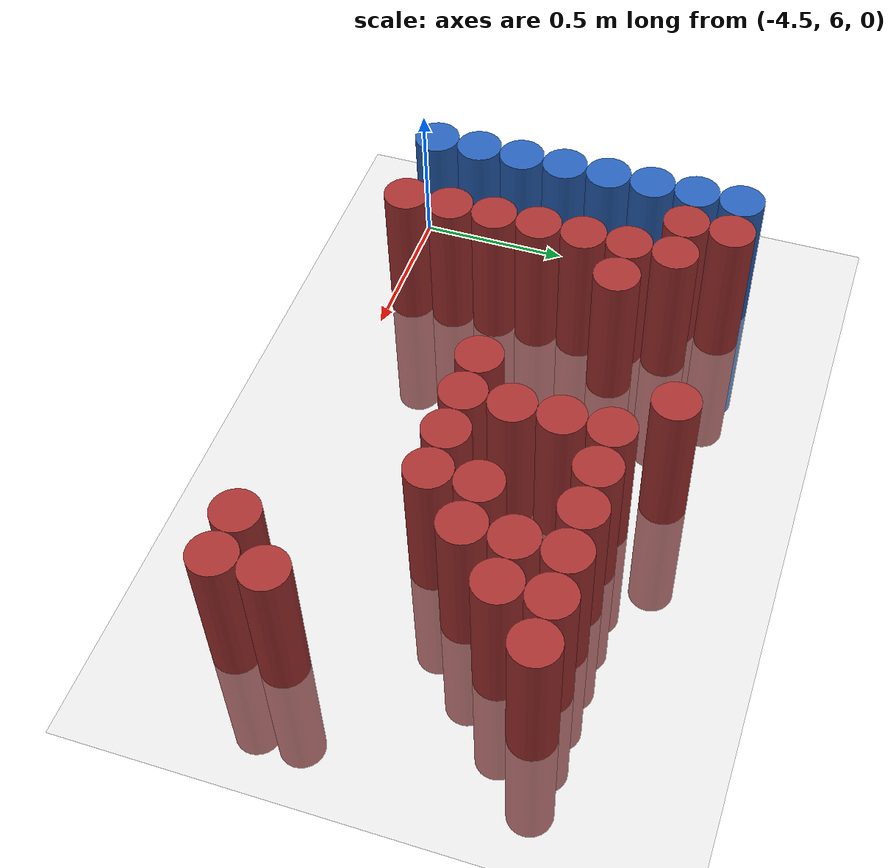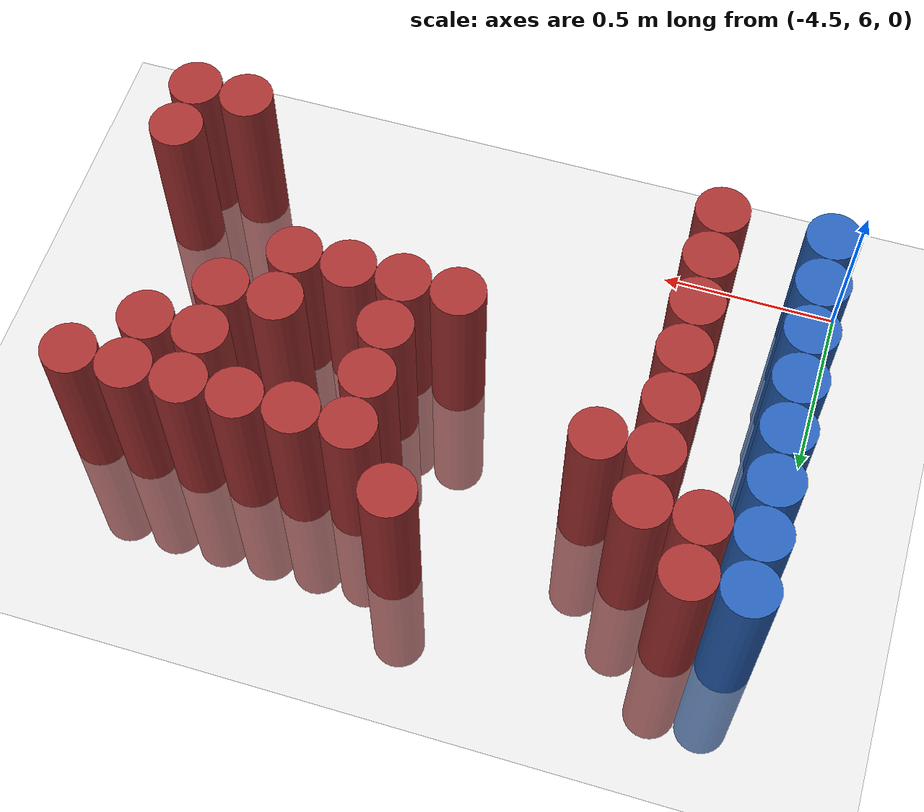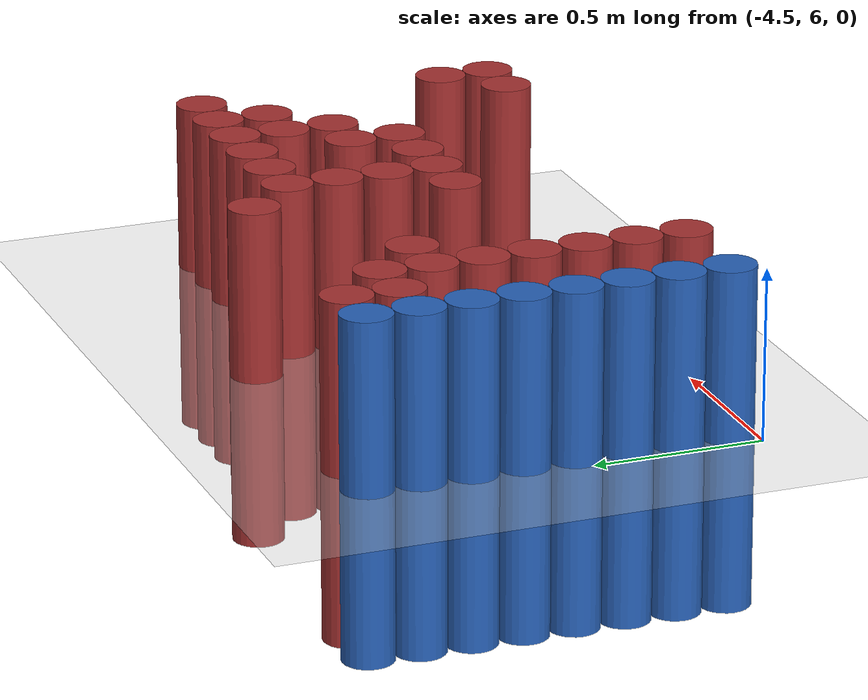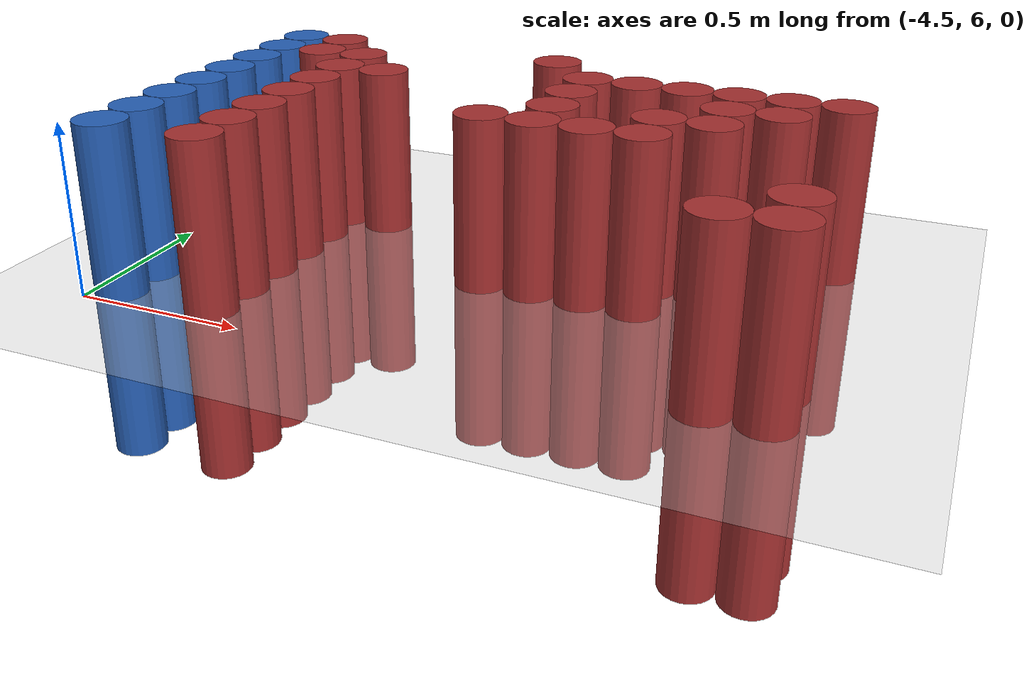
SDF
<sdf version="1.6">
 <world name="default">
  <model name="ground_plane">
   <static>1</static>
   <link name="link">
    <collision name="collision">
     <geometry><plane><normal>0 0 1</normal><size>100 100</size></plane></geometry>
     <surface><friction><ode><mu>100</mu><mu2>50</mu2></ode></friction></surface>
    </collision>
    <visual name="visual">
     <cast_shadows>0</cast_shadows>
     <geometry><plane><normal>0 0 1</normal><size>100 100</size></plane></geometry>
     <material>
      <script><uri>file://media/materials/scripts/gazebo.material</uri><name>Gazebo/Grey</name></script>
     </material>
    </visual>
   </link>
  </model>
  <model name="unit_cylinder_102">
   <static>1</static>
   <pose>-4.425000 6.075000 0.000000 0.000000 0.000000 0.000000</pose>
   <link name="link">
    <inertial>
     <mass>1</mass>
     <inertia><ixx>0.145833</ixx><ixy>0</ixy><ixz>0</ixz><iyy>0.145833</iyy><iyz>0</iyz><izz>0.125</izz></inertia>
    </inertial>
    <collision name="collision">
     <geometry><cylinder><radius>0.075000</radius><length>1</length></cylinder></geometry>
    </collision>
    <visual name="visual">
     <geometry><cylinder><radius>0.075000</radius><length>1</length></cylinder></geometry>
     <material>
      <ambient>0.152000 0.379000 0.720000 1</ambient>
      <diffuse>0.152000 0.379000 0.720000 1</diffuse>
     </material>
     <material>
      <script><name>Gazebo/Grey</name><uri>file://media/materials/scripts/gazebo.material</uri></script>
     </material>
    </visual>
    <sensor name="sensor_contact" type="contact"><contact><collision>collision</collision></contact></sensor>
   </link>
   <plugin filename="gz-sim-touchplugin-system" name="gz::sim::systems::TouchPlugin">
    <target>robot</target>
    <namespace>robot</namespace>
    <time>0.001</time>
    <enabled>true</enabled>
   </plugin>
  </model>
  <model name="unit_cylinder_103">
   <static>1</static>
   <pose>-4.425000 6.225000 0.000000 0.000000 0.000000 0.000000</pose>
   <link name="link">
    <inertial>
     <mass>1</mass>
     <inertia><ixx>0.145833</ixx><ixy>0</ixy><ixz>0</ixz><iyy>0.145833</iyy><iyz>0</iyz><izz>0.125</izz></inertia>
    </inertial>
    <collision name="collision">
     <geometry><cylinder><radius>0.075000</radius><length>1</length></cylinder></geometry>
    </collision>
    <visual name="visual">
     <geometry><cylinder><radius>0.075000</radius><length>1</length></cylinder></geometry>
     <material>
      <ambient>0.152000 0.379000 0.720000 1</ambient>
      <diffuse>0.152000 0.379000 0.720000 1</diffuse>
     </material>
     <material>
      <script><name>Gazebo/Grey</name><uri>file://media/materials/scripts/gazebo.material</uri></script>
     </material>
    </visual>
    <sensor name="sensor_contact" type="contact"><contact><collision>collision</collision></contact></sensor>
   </link>
   <plugin filename="gz-sim-touchplugin-system" name="gz::sim::systems::TouchPlugin">
    <target>robot</target>
    <namespace>robot</namespace>
    <time>0.001</time>
    <enabled>true</enabled>
   </plugin>
  </model>
  <model name="unit_cylinder_104">
   <static>1</static>
   <pose>-4.425000 6.375000 0.000000 0.000000 0.000000 0.000000</pose>
   <link name="link">
    <inertial>
     <mass>1</mass>
     <inertia><ixx>0.145833</ixx><ixy>0</ixy><ixz>0</ixz><iyy>0.145833</iyy><iyz>0</iyz><izz>0.125</izz></inertia>
    </inertial>
    <collision name="collision">
     <geometry><cylinder><radius>0.075000</radius><length>1</length></cylinder></geometry>
    </collision>
    <visual name="visual">
     <geometry><cylinder><radius>0.075000</radius><length>1</length></cylinder></geometry>
     <material>
      <ambient>0.152000 0.379000 0.720000 1</ambient>
      <diffuse>0.152000 0.379000 0.720000 1</diffuse>
     </material>
     <material>
      <script><name>Gazebo/Grey</name><uri>file://media/materials/scripts/gazebo.material</uri></script>
     </material>
    </visual>
    <sensor name="sensor_contact" type="contact"><contact><collision>collision</collision></contact></sensor>
   </link>
   <plugin filename="gz-sim-touchplugin-system" name="gz::sim::systems::TouchPlugin">
    <target>robot</target>
    <namespace>robot</namespace>
    <time>0.001</time>
    <enabled>true</enabled>
   </plugin>
  </model>
  <model name="unit_cylinder_105">
   <static>1</static>
   <pose>-4.425000 6.525000 0.000000 0.000000 0.000000 0.000000</pose>
   <link name="link">
    <inertial>
     <mass>1</mass>
     <inertia><ixx>0.145833</ixx><ixy>0</ixy><ixz>0</ixz><iyy>0.145833</iyy><iyz>0</iyz><izz>0.125</izz></inertia>
    </inertial>
    <collision name="collision">
     <geometry><cylinder><radius>0.075000</radius><length>1</length></cylinder></geometry>
    </collision>
    <visual name="visual">
     <geometry><cylinder><radius>0.075000</radius><length>1</length></cylinder></geometry>
     <material>
      <ambient>0.152000 0.379000 0.720000 1</ambient>
      <diffuse>0.152000 0.379000 0.720000 1</diffuse>
     </material>
     <material>
      <script><name>Gazebo/Grey</name><uri>file://media/materials/scripts/gazebo.material</uri></script>
     </material>
    </visual>
    <sensor name="sensor_contact" type="contact"><contact><collision>collision</collision></contact></sensor>
   </link>
   <plugin filename="gz-sim-touchplugin-system" name="gz::sim::systems::TouchPlugin">
    <target>robot</target>
    <namespace>robot</namespace>
    <time>0.001</time>
    <enabled>true</enabled>
   </plugin>
  </model>
  <model name="unit_cylinder_106">
   <static>1</static>
   <pose>-4.425000 6.675000 0.000000 0.000000 0.000000 0.000000</pose>
   <link name="link">
    <inertial>
     <mass>1</mass>
     <inertia><ixx>0.145833</ixx><ixy>0</ixy><ixz>0</ixz><iyy>0.145833</iyy><iyz>0</iyz><izz>0.125</izz></inertia>
    </inertial>
    <collision name="collision">
     <geometry><cylinder><radius>0.075000</radius><length>1</length></cylinder></geometry>
    </collision>
    <visual name="visual">
     <geometry><cylinder><radius>0.075000</radius><length>1</length></cylinder></geometry>
     <material>
      <ambient>0.152000 0.379000 0.720000 1</ambient>
      <diffuse>0.152000 0.379000 0.720000 1</diffuse>
     </material>
     <material>
      <script><name>Gazebo/Grey</name><uri>file://media/materials/scripts/gazebo.material</uri></script>
     </material>
    </visual>
    <sensor name="sensor_contact" type="contact"><contact><collision>collision</collision></contact></sensor>
   </link>
   <plugin filename="gz-sim-touchplugin-system" name="gz::sim::systems::TouchPlugin">
    <target>robot</target>
    <namespace>robot</namespace>
    <time>0.001</time>
    <enabled>true</enabled>
   </plugin>
  </model>
  <model name="unit_cylinder_107">
   <static>1</static>
   <pose>-4.425000 6.825000 0.000000 0.000000 0.000000 0.000000</pose>
   <link name="link">
    <inertial>
     <mass>1</mass>
     <inertia><ixx>0.145833</ixx><ixy>0</ixy><ixz>0</ixz><iyy>0.145833</iyy><iyz>0</iyz><izz>0.125</izz></inertia>
    </inertial>
    <collision name="collision">
     <geometry><cylinder><radius>0.075000</radius><length>1</length></cylinder></geometry>
    </collision>
    <visual name="visual">
     <geometry><cylinder><radius>0.075000</radius><length>1</length></cylinder></geometry>
     <material>
      <ambient>0.152000 0.379000 0.720000 1</ambient>
      <diffuse>0.152000 0.379000 0.720000 1</diffuse>
     </material>
     <material>
      <script><name>Gazebo/Grey</name><uri>file://media/materials/scripts/gazebo.material</uri></script>
     </material>
    </visual>
    <sensor name="sensor_contact" type="contact"><contact><collision>collision</collision></contact></sensor>
   </link>
   <plugin filename="gz-sim-touchplugin-system" name="gz::sim::systems::TouchPlugin">
    <target>robot</target>
    <namespace>robot</namespace>
    <time>0.001</time>
    <enabled>true</enabled>
   </plugin>
  </model>
  <model name="unit_cylinder_108">
   <static>1</static>
   <pose>-4.425000 6.975000 0.000000 0.000000 0.000000 0.000000</pose>
   <link name="link">
    <inertial>
     <mass>1</mass>
     <inertia><ixx>0.145833</ixx><ixy>0</ixy><ixz>0</ixz><iyy>0.145833</iyy><iyz>0</iyz><izz>0.125</izz></inertia>
    </inertial>
    <collision name="collision">
     <geometry><cylinder><radius>0.075000</radius><length>1</length></cylinder></geometry>
    </collision>
    <visual name="visual">
     <geometry><cylinder><radius>0.075000</radius><length>1</length></cylinder></geometry>
     <material>
      <ambient>0.152000 0.379000 0.720000 1</ambient>
      <diffuse>0.152000 0.379000 0.720000 1</diffuse>
     </material>
     <material>
      <script><name>Gazebo/Grey</name><uri>file://media/materials/scripts/gazebo.material</uri></script>
     </material>
    </visual>
    <sensor name="sensor_contact" type="contact"><contact><collision>collision</collision></contact></sensor>
   </link>
   <plugin filename="gz-sim-touchplugin-system" name="gz::sim::systems::TouchPlugin">
    <target>robot</target>
    <namespace>robot</namespace>
    <time>0.001</time>
    <enabled>true</enabled>
   </plugin>
  </model>
  <model name="unit_cylinder_109">
   <static>1</static>
   <pose>-4.425000 7.125000 0.000000 0.000000 0.000000 0.000000</pose>
   <link name="link">
    <inertial>
     <mass>1</mass>
     <inertia><ixx>0.145833</ixx><ixy>0</ixy><ixz>0</ixz><iyy>0.145833</iyy><iyz>0</iyz><izz>0.125</izz></inertia>
    </inertial>
    <collision name="collision">
     <geometry><cylinder><radius>0.075000</radius><length>1</length></cylinder></geometry>
    </collision>
    <visual name="visual">
     <geometry><cylinder><radius>0.075000</radius><length>1</length></cylinder></geometry>
     <material>
      <ambient>0.152000 0.379000 0.720000 1</ambient>
      <diffuse>0.152000 0.379000 0.720000 1</diffuse>
     </material>
     <material>
      <script><name>Gazebo/Grey</name><uri>file://media/materials/scripts/gazebo.material</uri></script>
     </material>
    </visual>
    <sensor name="sensor_contact" type="contact"><contact><collision>collision</collision></contact></sensor>
   </link>
   <plugin filename="gz-sim-touchplugin-system" name="gz::sim::systems::TouchPlugin">
    <target>robot</target>
    <namespace>robot</namespace>
    <time>0.001</time>
    <enabled>true</enabled>
   </plugin>
  </model>
  <model name="unit_cylinder_127">
   <static>1</static>
   <pose>-4.275000 6.975000 0.000000 0.000000 0.000000 0.000000</pose>
   <link name="link">
    <inertial>
     <mass>1</mass>
     <inertia><ixx>0.145833</ixx><ixy>0</ixy><ixz>0</ixz><iyy>0.145833</iyy><iyz>0</iyz><izz>0.125</izz></inertia>
    </inertial>
    <collision name="collision">
     <geometry><cylinder><radius>0.075000</radius><length>1</length></cylinder></geometry>
    </collision>
    <visual name="visual">
     <geometry><cylinder><radius>0.075000</radius><length>1</length></cylinder></geometry>
     <material>
      <ambient>0.648000 0.192000 0.192000 1</ambient>
      <diffuse>0.648000 0.192000 0.192000 1</diffuse>
     </material>
     <material>
      <script><name>Gazebo/Grey</name><uri>file://media/materials/scripts/gazebo.material</uri></script>
     </material>
    </visual>
    <sensor name="sensor_contact" type="contact"><contact><collision>collision</collision></contact></sensor>
   </link>
   <plugin filename="gz-sim-touchplugin-system" name="gz::sim::systems::TouchPlugin">
    <target>robot</target>
    <namespace>robot</namespace>
    <time>0.001</time>
    <enabled>true</enabled>
   </plugin>
  </model>
  <model name="unit_cylinder_128">
   <static>1</static>
   <pose>-4.275000 7.125000 0.000000 0.000000 0.000000 0.000000</pose>
   <link name="link">
    <inertial>
     <mass>1</mass>
     <inertia><ixx>0.145833</ixx><ixy>0</ixy><ixz>0</ixz><iyy>0.145833</iyy><iyz>0</iyz><izz>0.125</izz></inertia>
    </inertial>
    <collision name="collision">
     <geometry><cylinder><radius>0.075000</radius><length>1</length></cylinder></geometry>
    </collision>
    <visual name="visual">
     <geometry><cylinder><radius>0.075000</radius><length>1</length></cylinder></geometry>
     <material>
      <ambient>0.648000 0.192000 0.192000 1</ambient>
      <diffuse>0.648000 0.192000 0.192000 1</diffuse>
     </material>
     <material>
      <script><name>Gazebo/Grey</name><uri>file://media/materials/scripts/gazebo.material</uri></script>
     </material>
    </visual>
    <sensor name="sensor_contact" type="contact"><contact><collision>collision</collision></contact></sensor>
   </link>
   <plugin filename="gz-sim-touchplugin-system" name="gz::sim::systems::TouchPlugin">
    <target>robot</target>
    <namespace>robot</namespace>
    <time>0.001</time>
    <enabled>true</enabled>
   </plugin>
  </model>
  <model name="unit_cylinder_139">
   <static>1</static>
   <pose>-4.125000 6.075000 0.000000 0.000000 0.000000 0.000000</pose>
   <link name="link">
    <inertial>
     <mass>1</mass>
     <inertia><ixx>0.145833</ixx><ixy>0</ixy><ixz>0</ixz><iyy>0.145833</iyy><iyz>0</iyz><izz>0.125</izz></inertia>
    </inertial>
    <collision name="collision">
     <geometry><cylinder><radius>0.075000</radius><length>1</length></cylinder></geometry>
    </collision>
    <visual name="visual">
     <geometry><cylinder><radius>0.075000</radius><length>1</length></cylinder></geometry>
     <material>
      <ambient>0.648000 0.192000 0.192000 1</ambient>
      <diffuse>0.648000 0.192000 0.192000 1</diffuse>
     </material>
     <material>
      <script><name>Gazebo/Grey</name><uri>file://media/materials/scripts/gazebo.material</uri></script>
     </material>
    </visual>
    <sensor name="sensor_contact" type="contact"><contact><collision>collision</collision></contact></sensor>
   </link>
   <plugin filename="gz-sim-touchplugin-system" name="gz::sim::systems::TouchPlugin">
    <target>robot</target>
    <namespace>robot</namespace>
    <time>0.001</time>
    <enabled>true</enabled>
   </plugin>
  </model>
  <model name="unit_cylinder_140">
   <static>1</static>
   <pose>-4.125000 6.225000 0.000000 0.000000 0.000000 0.000000</pose>
   <link name="link">
    <inertial>
     <mass>1</mass>
     <inertia><ixx>0.145833</ixx><ixy>0</ixy><ixz>0</ixz><iyy>0.145833</iyy><iyz>0</iyz><izz>0.125</izz></inertia>
    </inertial>
    <collision name="collision">
     <geometry><cylinder><radius>0.075000</radius><length>1</length></cylinder></geometry>
    </collision>
    <visual name="visual">
     <geometry><cylinder><radius>0.075000</radius><length>1</length></cylinder></geometry>
     <material>
      <ambient>0.648000 0.192000 0.192000 1</ambient>
      <diffuse>0.648000 0.192000 0.192000 1</diffuse>
     </material>
     <material>
      <script><name>Gazebo/Grey</name><uri>file://media/materials/scripts/gazebo.material</uri></script>
     </material>
    </visual>
    <sensor name="sensor_contact" type="contact"><contact><collision>collision</collision></contact></sensor>
   </link>
   <plugin filename="gz-sim-touchplugin-system" name="gz::sim::systems::TouchPlugin">
    <target>robot</target>
    <namespace>robot</namespace>
    <time>0.001</time>
    <enabled>true</enabled>
   </plugin>
  </model>
  <model name="unit_cylinder_141">
   <static>1</static>
   <pose>-4.125000 6.375000 0.000000 0.000000 0.000000 0.000000</pose>
   <link name="link">
    <inertial>
     <mass>1</mass>
     <inertia><ixx>0.145833</ixx><ixy>0</ixy><ixz>0</ixz><iyy>0.145833</iyy><iyz>0</iyz><izz>0.125</izz></inertia>
    </inertial>
    <collision name="collision">
     <geometry><cylinder><radius>0.075000</radius><length>1</length></cylinder></geometry>
    </collision>
    <visual name="visual">
     <geometry><cylinder><radius>0.075000</radius><length>1</length></cylinder></geometry>
     <material>
      <ambient>0.648000 0.192000 0.192000 1</ambient>
      <diffuse>0.648000 0.192000 0.192000 1</diffuse>
     </material>
     <material>
      <script><name>Gazebo/Grey</name><uri>file://media/materials/scripts/gazebo.material</uri></script>
     </material>
    </visual>
    <sensor name="sensor_contact" type="contact"><contact><collision>collision</collision></contact></sensor>
   </link>
   <plugin filename="gz-sim-touchplugin-system" name="gz::sim::systems::TouchPlugin">
    <target>robot</target>
    <namespace>robot</namespace>
    <time>0.001</time>
    <enabled>true</enabled>
   </plugin>
  </model>
  <model name="unit_cylinder_142">
   <static>1</static>
   <pose>-4.125000 6.525000 0.000000 0.000000 0.000000 0.000000</pose>
   <link name="link">
    <inertial>
     <mass>1</mass>
     <inertia><ixx>0.145833</ixx><ixy>0</ixy><ixz>0</ixz><iyy>0.145833</iyy><iyz>0</iyz><izz>0.125</izz></inertia>
    </inertial>
    <collision name="collision">
     <geometry><cylinder><radius>0.075000</radius><length>1</length></cylinder></geometry>
    </collision>
    <visual name="visual">
     <geometry><cylinder><radius>0.075000</radius><length>1</length></cylinder></geometry>
     <material>
      <ambient>0.648000 0.192000 0.192000 1</ambient>
      <diffuse>0.648000 0.192000 0.192000 1</diffuse>
     </material>
     <material>
      <script><name>Gazebo/Grey</name><uri>file://media/materials/scripts/gazebo.material</uri></script>
     </material>
    </visual>
    <sensor name="sensor_contact" type="contact"><contact><collision>collision</collision></contact></sensor>
   </link>
   <plugin filename="gz-sim-touchplugin-system" name="gz::sim::systems::TouchPlugin">
    <target>robot</target>
    <namespace>robot</namespace>
    <time>0.001</time>
    <enabled>true</enabled>
   </plugin>
  </model>
  <model name="unit_cylinder_143">
   <static>1</static>
   <pose>-4.125000 6.675000 0.000000 0.000000 0.000000 0.000000</pose>
   <link name="link">
    <inertial>
     <mass>1</mass>
     <inertia><ixx>0.145833</ixx><ixy>0</ixy><ixz>0</ixz><iyy>0.145833</iyy><iyz>0</iyz><izz>0.125</izz></inertia>
    </inertial>
    <collision name="collision">
     <geometry><cylinder><radius>0.075000</radius><length>1</length></cylinder></geometry>
    </collision>
    <visual name="visual">
     <geometry><cylinder><radius>0.075000</radius><length>1</length></cylinder></geometry>
     <material>
      <ambient>0.648000 0.192000 0.192000 1</ambient>
      <diffuse>0.648000 0.192000 0.192000 1</diffuse>
     </material>
     <material>
      <script><name>Gazebo/Grey</name><uri>file://media/materials/scripts/gazebo.material</uri></script>
     </material>
    </visual>
    <sensor name="sensor_contact" type="contact"><contact><collision>collision</collision></contact></sensor>
   </link>
   <plugin filename="gz-sim-touchplugin-system" name="gz::sim::systems::TouchPlugin">
    <target>robot</target>
    <namespace>robot</namespace>
    <time>0.001</time>
    <enabled>true</enabled>
   </plugin>
  </model>
  <model name="unit_cylinder_144">
   <static>1</static>
   <pose>-4.125000 6.825000 0.000000 0.000000 0.000000 0.000000</pose>
   <link name="link">
    <inertial>
     <mass>1</mass>
     <inertia><ixx>0.145833</ixx><ixy>0</ixy><ixz>0</ixz><iyy>0.145833</iyy><iyz>0</iyz><izz>0.125</izz></inertia>
    </inertial>
    <collision name="collision">
     <geometry><cylinder><radius>0.075000</radius><length>1</length></cylinder></geometry>
    </collision>
    <visual name="visual">
     <geometry><cylinder><radius>0.075000</radius><length>1</length></cylinder></geometry>
     <material>
      <ambient>0.648000 0.192000 0.192000 1</ambient>
      <diffuse>0.648000 0.192000 0.192000 1</diffuse>
     </material>
     <material>
      <script><name>Gazebo/Grey</name><uri>file://media/materials/scripts/gazebo.material</uri></script>
     </material>
    </visual>
    <sensor name="sensor_contact" type="contact"><contact><collision>collision</collision></contact></sensor>
   </link>
   <plugin filename="gz-sim-touchplugin-system" name="gz::sim::systems::TouchPlugin">
    <target>robot</target>
    <namespace>robot</namespace>
    <time>0.001</time>
    <enabled>true</enabled>
   </plugin>
  </model>
  <model name="unit_cylinder_145">
   <static>1</static>
   <pose>-4.125000 6.975000 0.000000 0.000000 0.000000 0.000000</pose>
   <link name="link">
    <inertial>
     <mass>1</mass>
     <inertia><ixx>0.145833</ixx><ixy>0</ixy><ixz>0</ixz><iyy>0.145833</iyy><iyz>0</iyz><izz>0.125</izz></inertia>
    </inertial>
    <collision name="collision">
     <geometry><cylinder><radius>0.075000</radius><length>1</length></cylinder></geometry>
    </collision>
    <visual name="visual">
     <geometry><cylinder><radius>0.075000</radius><length>1</length></cylinder></geometry>
     <material>
      <ambient>0.648000 0.192000 0.192000 1</ambient>
      <diffuse>0.648000 0.192000 0.192000 1</diffuse>
     </material>
     <material>
      <script><name>Gazebo/Grey</name><uri>file://media/materials/scripts/gazebo.material</uri></script>
     </material>
    </visual>
    <sensor name="sensor_contact" type="contact"><contact><collision>collision</collision></contact></sensor>
   </link>
   <plugin filename="gz-sim-touchplugin-system" name="gz::sim::systems::TouchPlugin">
    <target>robot</target>
    <namespace>robot</namespace>
    <time>0.001</time>
    <enabled>true</enabled>
   </plugin>
  </model>
  <model name="unit_cylinder_148">
   <static>1</static>
   <pose>-3.975000 6.825000 0.000000 0.000000 0.000000 0.000000</pose>
   <link name="link">
    <inertial>
     <mass>1</mass>
     <inertia><ixx>0.145833</ixx><ixy>0</ixy><ixz>0</ixz><iyy>0.145833</iyy><iyz>0</iyz><izz>0.125</izz></inertia>
    </inertial>
    <collision name="collision">
     <geometry><cylinder><radius>0.075000</radius><length>1</length></cylinder></geometry>
    </collision>
    <visual name="visual">
     <geometry><cylinder><radius>0.075000</radius><length>1</length></cylinder></geometry>
     <material>
      <ambient>0.648000 0.192000 0.192000 1</ambient>
      <diffuse>0.648000 0.192000 0.192000 1</diffuse>
     </material>
     <material>
      <script><name>Gazebo/Grey</name><uri>file://media/materials/scripts/gazebo.material</uri></script>
     </material>
    </visual>
    <sensor name="sensor_contact" type="contact"><contact><collision>collision</collision></contact></sensor>
   </link>
   <plugin filename="gz-sim-touchplugin-system" name="gz::sim::systems::TouchPlugin">
    <target>robot</target>
    <namespace>robot</namespace>
    <time>0.001</time>
    <enabled>true</enabled>
   </plugin>
  </model>
  <model name="unit_cylinder_160">
   <static>1</static>
   <pose>-3.525000 6.525000 0.000000 0.000000 0.000000 0.000000</pose>
   <link name="link">
    <inertial>
     <mass>1</mass>
     <inertia><ixx>0.145833</ixx><ixy>0</ixy><ixz>0</ixz><iyy>0.145833</iyy><iyz>0</iyz><izz>0.125</izz></inertia>
    </inertial>
    <collision name="collision">
     <geometry><cylinder><radius>0.075000</radius><length>1</length></cylinder></geometry>
    </collision>
    <visual name="visual">
     <geometry><cylinder><radius>0.075000</radius><length>1</length></cylinder></geometry>
     <material>
      <ambient>0.648000 0.192000 0.192000 1</ambient>
      <diffuse>0.648000 0.192000 0.192000 1</diffuse>
     </material>
     <material>
      <script><name>Gazebo/Grey</name><uri>file://media/materials/scripts/gazebo.material</uri></script>
     </material>
    </visual>
    <sensor name="sensor_contact" type="contact"><contact><collision>collision</collision></contact></sensor>
   </link>
   <plugin filename="gz-sim-touchplugin-system" name="gz::sim::systems::TouchPlugin">
    <target>robot</target>
    <namespace>robot</namespace>
    <time>0.001</time>
    <enabled>true</enabled>
   </plugin>
  </model>
  <model name="unit_cylinder_161">
   <static>1</static>
   <pose>-3.525000 7.125000 0.000000 0.000000 0.000000 0.000000</pose>
   <link name="link">
    <inertial>
     <mass>1</mass>
     <inertia><ixx>0.145833</ixx><ixy>0</ixy><ixz>0</ixz><iyy>0.145833</iyy><iyz>0</iyz><izz>0.125</izz></inertia>
    </inertial>
    <collision name="collision">
     <geometry><cylinder><radius>0.075000</radius><length>1</length></cylinder></geometry>
    </collision>
    <visual name="visual">
     <geometry><cylinder><radius>0.075000</radius><length>1</length></cylinder></geometry>
     <material>
      <ambient>0.648000 0.192000 0.192000 1</ambient>
      <diffuse>0.648000 0.192000 0.192000 1</diffuse>
     </material>
     <material>
      <script><name>Gazebo/Grey</name><uri>file://media/materials/scripts/gazebo.material</uri></script>
     </material>
    </visual>
    <sensor name="sensor_contact" type="contact"><contact><collision>collision</collision></contact></sensor>
   </link>
   <plugin filename="gz-sim-touchplugin-system" name="gz::sim::systems::TouchPlugin">
    <target>robot</target>
    <namespace>robot</namespace>
    <time>0.001</time>
    <enabled>true</enabled>
   </plugin>
  </model>
  <model name="unit_cylinder_165">
   <static>1</static>
   <pose>-3.375000 6.525000 0.000000 0.000000 0.000000 0.000000</pose>
   <link name="link">
    <inertial>
     <mass>1</mass>
     <inertia><ixx>0.145833</ixx><ixy>0</ixy><ixz>0</ixz><iyy>0.145833</iyy><iyz>0</iyz><izz>0.125</izz></inertia>
    </inertial>
    <collision name="collision">
     <geometry><cylinder><radius>0.075000</radius><length>1</length></cylinder></geometry>
    </collision>
    <visual name="visual">
     <geometry><cylinder><radius>0.075000</radius><length>1</length></cylinder></geometry>
     <material>
      <ambient>0.648000 0.192000 0.192000 1</ambient>
      <diffuse>0.648000 0.192000 0.192000 1</diffuse>
     </material>
     <material>
      <script><name>Gazebo/Grey</name><uri>file://media/materials/scripts/gazebo.material</uri></script>
     </material>
    </visual>
    <sensor name="sensor_contact" type="contact"><contact><collision>collision</collision></contact></sensor>
   </link>
   <plugin filename="gz-sim-touchplugin-system" name="gz::sim::systems::TouchPlugin">
    <target>robot</target>
    <namespace>robot</namespace>
    <time>0.001</time>
    <enabled>true</enabled>
   </plugin>
  </model>
  <model name="unit_cylinder_166">
   <static>1</static>
   <pose>-3.375000 6.675000 0.000000 0.000000 0.000000 0.000000</pose>
   <link name="link">
    <inertial>
     <mass>1</mass>
     <inertia><ixx>0.145833</ixx><ixy>0</ixy><ixz>0</ixz><iyy>0.145833</iyy><iyz>0</iyz><izz>0.125</izz></inertia>
    </inertial>
    <collision name="collision">
     <geometry><cylinder><radius>0.075000</radius><length>1</length></cylinder></geometry>
    </collision>
    <visual name="visual">
     <geometry><cylinder><radius>0.075000</radius><length>1</length></cylinder></geometry>
     <material>
      <ambient>0.648000 0.192000 0.192000 1</ambient>
      <diffuse>0.648000 0.192000 0.192000 1</diffuse>
     </material>
     <material>
      <script><name>Gazebo/Grey</name><uri>file://media/materials/scripts/gazebo.material</uri></script>
     </material>
    </visual>
    <sensor name="sensor_contact" type="contact"><contact><collision>collision</collision></contact></sensor>
   </link>
   <plugin filename="gz-sim-touchplugin-system" name="gz::sim::systems::TouchPlugin">
    <target>robot</target>
    <namespace>robot</namespace>
    <time>0.001</time>
    <enabled>true</enabled>
   </plugin>
  </model>
  <model name="unit_cylinder_167">
   <static>1</static>
   <pose>-3.375000 6.825000 0.000000 0.000000 0.000000 0.000000</pose>
   <link name="link">
    <inertial>
     <mass>1</mass>
     <inertia><ixx>0.145833</ixx><ixy>0</ixy><ixz>0</ixz><iyy>0.145833</iyy><iyz>0</iyz><izz>0.125</izz></inertia>
    </inertial>
    <collision name="collision">
     <geometry><cylinder><radius>0.075000</radius><length>1</length></cylinder></geometry>
    </collision>
    <visual name="visual">
     <geometry><cylinder><radius>0.075000</radius><length>1</length></cylinder></geometry>
     <material>
      <ambient>0.648000 0.192000 0.192000 1</ambient>
      <diffuse>0.648000 0.192000 0.192000 1</diffuse>
     </material>
     <material>
      <script><name>Gazebo/Grey</name><uri>file://media/materials/scripts/gazebo.material</uri></script>
     </material>
    </visual>
    <sensor name="sensor_contact" type="contact"><contact><collision>collision</collision></contact></sensor>
   </link>
   <plugin filename="gz-sim-touchplugin-system" name="gz::sim::systems::TouchPlugin">
    <target>robot</target>
    <namespace>robot</namespace>
    <time>0.001</time>
    <enabled>true</enabled>
   </plugin>
  </model>
  <model name="unit_cylinder_168">
   <static>1</static>
   <pose>-3.375000 6.975000 0.000000 0.000000 0.000000 0.000000</pose>
   <link name="link">
    <inertial>
     <mass>1</mass>
     <inertia><ixx>0.145833</ixx><ixy>0</ixy><ixz>0</ixz><iyy>0.145833</iyy><iyz>0</iyz><izz>0.125</izz></inertia>
    </inertial>
    <collision name="collision">
     <geometry><cylinder><radius>0.075000</radius><length>1</length></cylinder></geometry>
    </collision>
    <visual name="visual">
     <geometry><cylinder><radius>0.075000</radius><length>1</length></cylinder></geometry>
     <material>
      <ambient>0.648000 0.192000 0.192000 1</ambient>
      <diffuse>0.648000 0.192000 0.192000 1</diffuse>
     </material>
     <material>
      <script><name>Gazebo/Grey</name><uri>file://media/materials/scripts/gazebo.material</uri></script>
     </material>
    </visual>
    <sensor name="sensor_contact" type="contact"><contact><collision>collision</collision></contact></sensor>
   </link>
   <plugin filename="gz-sim-touchplugin-system" name="gz::sim::systems::TouchPlugin">
    <target>robot</target>
    <namespace>robot</namespace>
    <time>0.001</time>
    <enabled>true</enabled>
   </plugin>
  </model>
  <model name="unit_cylinder_173">
   <static>1</static>
   <pose>-3.225000 6.525000 0.000000 0.000000 0.000000 0.000000</pose>
   <link name="link">
    <inertial>
     <mass>1</mass>
     <inertia><ixx>0.145833</ixx><ixy>0</ixy><ixz>0</ixz><iyy>0.145833</iyy><iyz>0</iyz><izz>0.125</izz></inertia>
    </inertial>
    <collision name="collision">
     <geometry><cylinder><radius>0.075000</radius><length>1</length></cylinder></geometry>
    </collision>
    <visual name="visual">
     <geometry><cylinder><radius>0.075000</radius><length>1</length></cylinder></geometry>
     <material>
      <ambient>0.648000 0.192000 0.192000 1</ambient>
      <diffuse>0.648000 0.192000 0.192000 1</diffuse>
     </material>
     <material>
      <script><name>Gazebo/Grey</name><uri>file://media/materials/scripts/gazebo.material</uri></script>
     </material>
    </visual>
    <sensor name="sensor_contact" type="contact"><contact><collision>collision</collision></contact></sensor>
   </link>
   <plugin filename="gz-sim-touchplugin-system" name="gz::sim::systems::TouchPlugin">
    <target>robot</target>
    <namespace>robot</namespace>
    <time>0.001</time>
    <enabled>true</enabled>
   </plugin>
  </model>
  <model name="unit_cylinder_174">
   <static>1</static>
   <pose>-3.225000 6.975000 0.000000 0.000000 0.000000 0.000000</pose>
   <link name="link">
    <inertial>
     <mass>1</mass>
     <inertia><ixx>0.145833</ixx><ixy>0</ixy><ixz>0</ixz><iyy>0.145833</iyy><iyz>0</iyz><izz>0.125</izz></inertia>
    </inertial>
    <collision name="collision">
     <geometry><cylinder><radius>0.075000</radius><length>1</length></cylinder></geometry>
    </collision>
    <visual name="visual">
     <geometry><cylinder><radius>0.075000</radius><length>1</length></cylinder></geometry>
     <material>
      <ambient>0.648000 0.192000 0.192000 1</ambient>
      <diffuse>0.648000 0.192000 0.192000 1</diffuse>
     </material>
     <material>
      <script><name>Gazebo/Grey</name><uri>file://media/materials/scripts/gazebo.material</uri></script>
     </material>
    </visual>
    <sensor name="sensor_contact" type="contact"><contact><collision>collision</collision></contact></sensor>
   </link>
   <plugin filename="gz-sim-touchplugin-system" name="gz::sim::systems::TouchPlugin">
    <target>robot</target>
    <namespace>robot</namespace>
    <time>0.001</time>
    <enabled>true</enabled>
   </plugin>
  </model>
  <model name="unit_cylinder_180">
   <static>1</static>
   <pose>-3.075000 6.525000 0.000000 0.000000 0.000000 0.000000</pose>
   <link name="link">
    <inertial>
     <mass>1</mass>
     <inertia><ixx>0.145833</ixx><ixy>0</ixy><ixz>0</ixz><iyy>0.145833</iyy><iyz>0</iyz><izz>0.125</izz></inertia>
    </inertial>
    <collision name="collision">
     <geometry><cylinder><radius>0.075000</radius><length>1</length></cylinder></geometry>
    </collision>
    <visual name="visual">
     <geometry><cylinder><radius>0.075000</radius><length>1</length></cylinder></geometry>
     <material>
      <ambient>0.648000 0.192000 0.192000 1</ambient>
      <diffuse>0.648000 0.192000 0.192000 1</diffuse>
     </material>
     <material>
      <script><name>Gazebo/Grey</name><uri>file://media/materials/scripts/gazebo.material</uri></script>
     </material>
    </visual>
    <sensor name="sensor_contact" type="contact"><contact><collision>collision</collision></contact></sensor>
   </link>
   <plugin filename="gz-sim-touchplugin-system" name="gz::sim::systems::TouchPlugin">
    <target>robot</target>
    <namespace>robot</namespace>
    <time>0.001</time>
    <enabled>true</enabled>
   </plugin>
  </model>
  <model name="unit_cylinder_181">
   <static>1</static>
   <pose>-3.075000 6.675000 0.000000 0.000000 0.000000 0.000000</pose>
   <link name="link">
    <inertial>
     <mass>1</mass>
     <inertia><ixx>0.145833</ixx><ixy>0</ixy><ixz>0</ixz><iyy>0.145833</iyy><iyz>0</iyz><izz>0.125</izz></inertia>
    </inertial>
    <collision name="collision">
     <geometry><cylinder><radius>0.075000</radius><length>1</length></cylinder></geometry>
    </collision>
    <visual name="visual">
     <geometry><cylinder><radius>0.075000</radius><length>1</length></cylinder></geometry>
     <material>
      <ambient>0.648000 0.192000 0.192000 1</ambient>
      <diffuse>0.648000 0.192000 0.192000 1</diffuse>
     </material>
     <material>
      <script><name>Gazebo/Grey</name><uri>file://media/materials/scripts/gazebo.material</uri></script>
     </material>
    </visual>
    <sensor name="sensor_contact" type="contact"><contact><collision>collision</collision></contact></sensor>
   </link>
   <plugin filename="gz-sim-touchplugin-system" name="gz::sim::systems::TouchPlugin">
    <target>robot</target>
    <namespace>robot</namespace>
    <time>0.001</time>
    <enabled>true</enabled>
   </plugin>
  </model>
  <model name="unit_cylinder_182">
   <static>1</static>
   <pose>-3.075000 6.975000 0.000000 0.000000 0.000000 0.000000</pose>
   <link name="link">
    <inertial>
     <mass>1</mass>
     <inertia><ixx>0.145833</ixx><ixy>0</ixy><ixz>0</ixz><iyy>0.145833</iyy><iyz>0</iyz><izz>0.125</izz></inertia>
    </inertial>
    <collision name="collision">
     <geometry><cylinder><radius>0.075000</radius><length>1</length></cylinder></geometry>
    </collision>
    <visual name="visual">
     <geometry><cylinder><radius>0.075000</radius><length>1</length></cylinder></geometry>
     <material>
      <ambient>0.648000 0.192000 0.192000 1</ambient>
      <diffuse>0.648000 0.192000 0.192000 1</diffuse>
     </material>
     <material>
      <script><name>Gazebo/Grey</name><uri>file://media/materials/scripts/gazebo.material</uri></script>
     </material>
    </visual>
    <sensor name="sensor_contact" type="contact"><contact><collision>collision</collision></contact></sensor>
   </link>
   <plugin filename="gz-sim-touchplugin-system" name="gz::sim::systems::TouchPlugin">
    <target>robot</target>
    <namespace>robot</namespace>
    <time>0.001</time>
    <enabled>true</enabled>
   </plugin>
  </model>
  <model name="unit_cylinder_188">
   <static>1</static>
   <pose>-2.925000 6.675000 0.000000 0.000000 0.000000 0.000000</pose>
   <link name="link">
    <inertial>
     <mass>1</mass>
     <inertia><ixx>0.145833</ixx><ixy>0</ixy><ixz>0</ixz><iyy>0.145833</iyy><iyz>0</iyz><izz>0.125</izz></inertia>
    </inertial>
    <collision name="collision">
     <geometry><cylinder><radius>0.075000</radius><length>1</length></cylinder></geometry>
    </collision>
    <visual name="visual">
     <geometry><cylinder><radius>0.075000</radius><length>1</length></cylinder></geometry>
     <material>
      <ambient>0.648000 0.192000 0.192000 1</ambient>
      <diffuse>0.648000 0.192000 0.192000 1</diffuse>
     </material>
     <material>
      <script><name>Gazebo/Grey</name><uri>file://media/materials/scripts/gazebo.material</uri></script>
     </material>
    </visual>
    <sensor name="sensor_contact" type="contact"><contact><collision>collision</collision></contact></sensor>
   </link>
   <plugin filename="gz-sim-touchplugin-system" name="gz::sim::systems::TouchPlugin">
    <target>robot</target>
    <namespace>robot</namespace>
    <time>0.001</time>
    <enabled>true</enabled>
   </plugin>
  </model>
  <model name="unit_cylinder_189">
   <static>1</static>
   <pose>-2.925000 6.825000 0.000000 0.000000 0.000000 0.000000</pose>
   <link name="link">
    <inertial>
     <mass>1</mass>
     <inertia><ixx>0.145833</ixx><ixy>0</ixy><ixz>0</ixz><iyy>0.145833</iyy><iyz>0</iyz><izz>0.125</izz></inertia>
    </inertial>
    <collision name="collision">
     <geometry><cylinder><radius>0.075000</radius><length>1</length></cylinder></geometry>
    </collision>
    <visual name="visual">
     <geometry><cylinder><radius>0.075000</radius><length>1</length></cylinder></geometry>
     <material>
      <ambient>0.648000 0.192000 0.192000 1</ambient>
      <diffuse>0.648000 0.192000 0.192000 1</diffuse>
     </material>
     <material>
      <script><name>Gazebo/Grey</name><uri>file://media/materials/scripts/gazebo.material</uri></script>
     </material>
    </visual>
    <sensor name="sensor_contact" type="contact"><contact><collision>collision</collision></contact></sensor>
   </link>
   <plugin filename="gz-sim-touchplugin-system" name="gz::sim::systems::TouchPlugin">
    <target>robot</target>
    <namespace>robot</namespace>
    <time>0.001</time>
    <enabled>true</enabled>
   </plugin>
  </model>
  <model name="unit_cylinder_190">
   <static>1</static>
   <pose>-2.925000 6.975000 0.000000 0.000000 0.000000 0.000000</pose>
   <link name="link">
    <inertial>
     <mass>1</mass>
     <inertia><ixx>0.145833</ixx><ixy>0</ixy><ixz>0</ixz><iyy>0.145833</iyy><iyz>0</iyz><izz>0.125</izz></inertia>
    </inertial>
    <collision name="collision">
     <geometry><cylinder><radius>0.075000</radius><length>1</length></cylinder></geometry>
    </collision>
    <visual name="visual">
     <geometry><cylinder><radius>0.075000</radius><length>1</length></cylinder></geometry>
     <material>
      <ambient>0.648000 0.192000 0.192000 1</ambient>
      <diffuse>0.648000 0.192000 0.192000 1</diffuse>
     </material>
     <material>
      <script><name>Gazebo/Grey</name><uri>file://media/materials/scripts/gazebo.material</uri></script>
     </material>
    </visual>
    <sensor name="sensor_contact" type="contact"><contact><collision>collision</collision></contact></sensor>
   </link>
   <plugin filename="gz-sim-touchplugin-system" name="gz::sim::systems::TouchPlugin">
    <target>robot</target>
    <namespace>robot</namespace>
    <time>0.001</time>
    <enabled>true</enabled>
   </plugin>
  </model>
  <model name="unit_cylinder_193">
   <static>1</static>
   <pose>-2.775000 6.075000 0.000000 0.000000 0.000000 0.000000</pose>
   <link name="link">
    <inertial>
     <mass>1</mass>
     <inertia><ixx>0.145833</ixx><ixy>0</ixy><ixz>0</ixz><iyy>0.145833</iyy><iyz>0</iyz><izz>0.125</izz></inertia>
    </inertial>
    <collision name="collision">
     <geometry><cylinder><radius>0.075000</radius><length>1</length></cylinder></geometry>
    </collision>
    <visual name="visual">
     <geometry><cylinder><radius>0.075000</radius><length>1</length></cylinder></geometry>
     <material>
      <ambient>0.648000 0.192000 0.192000 1</ambient>
      <diffuse>0.648000 0.192000 0.192000 1</diffuse>
     </material>
     <material>
      <script><name>Gazebo/Grey</name><uri>file://media/materials/scripts/gazebo.material</uri></script>
     </material>
    </visual>
    <sensor name="sensor_contact" type="contact"><contact><collision>collision</collision></contact></sensor>
   </link>
   <plugin filename="gz-sim-touchplugin-system" name="gz::sim::systems::TouchPlugin">
    <target>robot</target>
    <namespace>robot</namespace>
    <time>0.001</time>
    <enabled>true</enabled>
   </plugin>
  </model>
  <model name="unit_cylinder_194">
   <static>1</static>
   <pose>-2.775000 6.825000 0.000000 0.000000 0.000000 0.000000</pose>
   <link name="link">
    <inertial>
     <mass>1</mass>
     <inertia><ixx>0.145833</ixx><ixy>0</ixy><ixz>0</ixz><iyy>0.145833</iyy><iyz>0</iyz><izz>0.125</izz></inertia>
    </inertial>
    <collision name="collision">
     <geometry><cylinder><radius>0.075000</radius><length>1</length></cylinder></geometry>
    </collision>
    <visual name="visual">
     <geometry><cylinder><radius>0.075000</radius><length>1</length></cylinder></geometry>
     <material>
      <ambient>0.648000 0.192000 0.192000 1</ambient>
      <diffuse>0.648000 0.192000 0.192000 1</diffuse>
     </material>
     <material>
      <script><name>Gazebo/Grey</name><uri>file://media/materials/scripts/gazebo.material</uri></script>
     </material>
    </visual>
    <sensor name="sensor_contact" type="contact"><contact><collision>collision</collision></contact></sensor>
   </link>
   <plugin filename="gz-sim-touchplugin-system" name="gz::sim::systems::TouchPlugin">
    <target>robot</target>
    <namespace>robot</namespace>
    <time>0.001</time>
    <enabled>true</enabled>
   </plugin>
  </model>
  <model name="unit_cylinder_195">
   <static>1</static>
   <pose>-2.775000 6.975000 0.000000 0.000000 0.000000 0.000000</pose>
   <link name="link">
    <inertial>
     <mass>1</mass>
     <inertia><ixx>0.145833</ixx><ixy>0</ixy><ixz>0</ixz><iyy>0.145833</iyy><iyz>0</iyz><izz>0.125</izz></inertia>
    </inertial>
    <collision name="collision">
     <geometry><cylinder><radius>0.075000</radius><length>1</length></cylinder></geometry>
    </collision>
    <visual name="visual">
     <geometry><cylinder><radius>0.075000</radius><length>1</length></cylinder></geometry>
     <material>
      <ambient>0.648000 0.192000 0.192000 1</ambient>
      <diffuse>0.648000 0.192000 0.192000 1</diffuse>
     </material>
     <material>
      <script><name>Gazebo/Grey</name><uri>file://media/materials/scripts/gazebo.material</uri></script>
     </material>
    </visual>
    <sensor name="sensor_contact" type="contact"><contact><collision>collision</collision></contact></sensor>
   </link>
   <plugin filename="gz-sim-touchplugin-system" name="gz::sim::systems::TouchPlugin">
    <target>robot</target>
    <namespace>robot</namespace>
    <time>0.001</time>
    <enabled>true</enabled>
   </plugin>
  </model>
  <model name="unit_cylinder_200">
   <static>1</static>
   <pose>-2.625000 6.075000 0.000000 0.000000 0.000000 0.000000</pose>
   <link name="link">
    <inertial>
     <mass>1</mass>
     <inertia><ixx>0.145833</ixx><ixy>0</ixy><ixz>0</ixz><iyy>0.145833</iyy><iyz>0</iyz><izz>0.125</izz></inertia>
    </inertial>
    <collision name="collision">
     <geometry><cylinder><radius>0.075000</radius><length>1</length></cylinder></geometry>
    </collision>
    <visual name="visual">
     <geometry><cylinder><radius>0.075000</radius><length>1</length></cylinder></geometry>
     <material>
      <ambient>0.648000 0.192000 0.192000 1</ambient>
      <diffuse>0.648000 0.192000 0.192000 1</diffuse>
     </material>
     <material>
      <script><name>Gazebo/Grey</name><uri>file://media/materials/scripts/gazebo.material</uri></script>
     </material>
    </visual>
    <sensor name="sensor_contact" type="contact"><contact><collision>collision</collision></contact></sensor>
   </link>
   <plugin filename="gz-sim-touchplugin-system" name="gz::sim::systems::TouchPlugin">
    <target>robot</target>
    <namespace>robot</namespace>
    <time>0.001</time>
    <enabled>true</enabled>
   </plugin>
  </model>
  <model name="unit_cylinder_201">
   <static>1</static>
   <pose>-2.625000 6.225000 0.000000 0.000000 0.000000 0.000000</pose>
   <link name="link">
    <inertial>
     <mass>1</mass>
     <inertia><ixx>0.145833</ixx><ixy>0</ixy><ixz>0</ixz><iyy>0.145833</iyy><iyz>0</iyz><izz>0.125</izz></inertia>
    </inertial>
    <collision name="collision">
     <geometry><cylinder><radius>0.075000</radius><length>1</length></cylinder></geometry>
    </collision>
    <visual name="visual">
     <geometry><cylinder><radius>0.075000</radius><length>1</length></cylinder></geometry>
     <material>
      <ambient>0.648000 0.192000 0.192000 1</ambient>
      <diffuse>0.648000 0.192000 0.192000 1</diffuse>
     </material>
     <material>
      <script><name>Gazebo/Grey</name><uri>file://media/materials/scripts/gazebo.material</uri></script>
     </material>
    </visual>
    <sensor name="sensor_contact" type="contact"><contact><collision>collision</collision></contact></sensor>
   </link>
   <plugin filename="gz-sim-touchplugin-system" name="gz::sim::systems::TouchPlugin">
    <target>robot</target>
    <namespace>robot</namespace>
    <time>0.001</time>
    <enabled>true</enabled>
   </plugin>
  </model>
  <model name="unit_cylinder_202">
   <static>1</static>
   <pose>-2.625000 6.975000 0.000000 0.000000 0.000000 0.000000</pose>
   <link name="link">
    <inertial>
     <mass>1</mass>
     <inertia><ixx>0.145833</ixx><ixy>0</ixy><ixz>0</ixz><iyy>0.145833</iyy><iyz>0</iyz><izz>0.125</izz></inertia>
    </inertial>
    <collision name="collision">
     <geometry><cylinder><radius>0.075000</radius><length>1</length></cylinder></geometry>
    </collision>
    <visual name="visual">
     <geometry><cylinder><radius>0.075000</radius><length>1</length></cylinder></geometry>
     <material>
      <ambient>0.648000 0.192000 0.192000 1</ambient>
      <diffuse>0.648000 0.192000 0.192000 1</diffuse>
     </material>
     <material>
      <script><name>Gazebo/Grey</name><uri>file://media/materials/scripts/gazebo.material</uri></script>
     </material>
    </visual>
    <sensor name="sensor_contact" type="contact"><contact><collision>collision</collision></contact></sensor>
   </link>
   <plugin filename="gz-sim-touchplugin-system" name="gz::sim::systems::TouchPlugin">
    <target>robot</target>
    <namespace>robot</namespace>
    <time>0.001</time>
    <enabled>true</enabled>
   </plugin>
  </model>
 </world>
</sdf>
